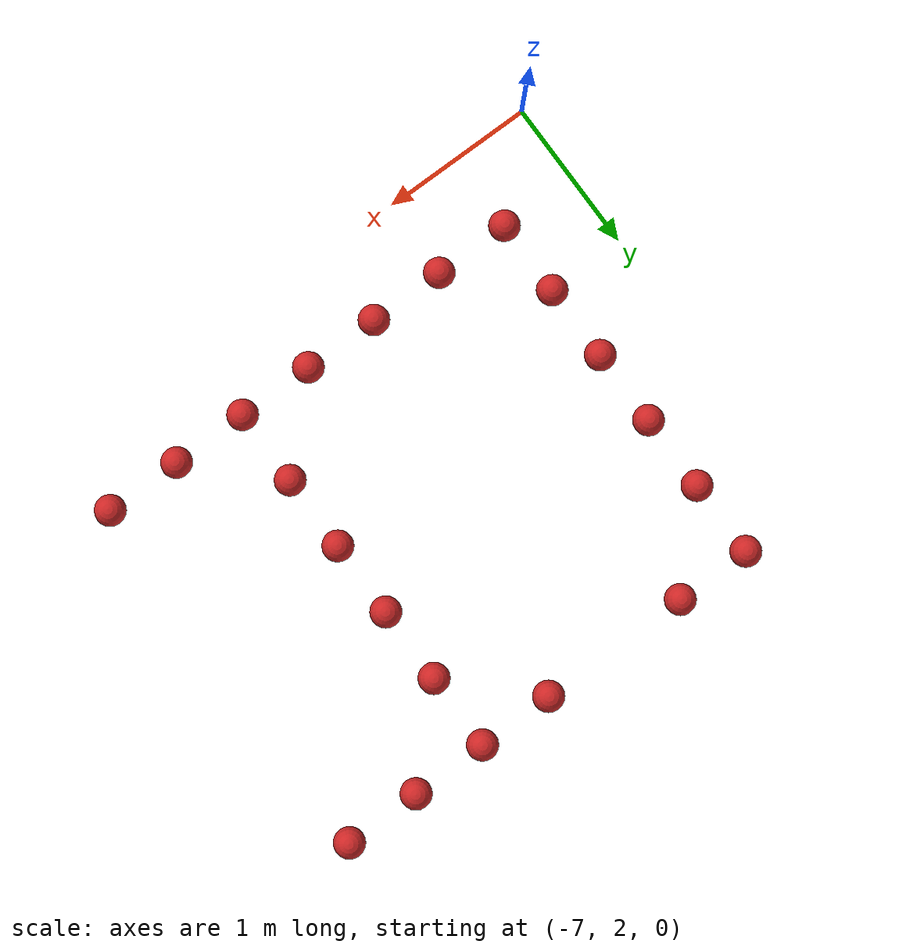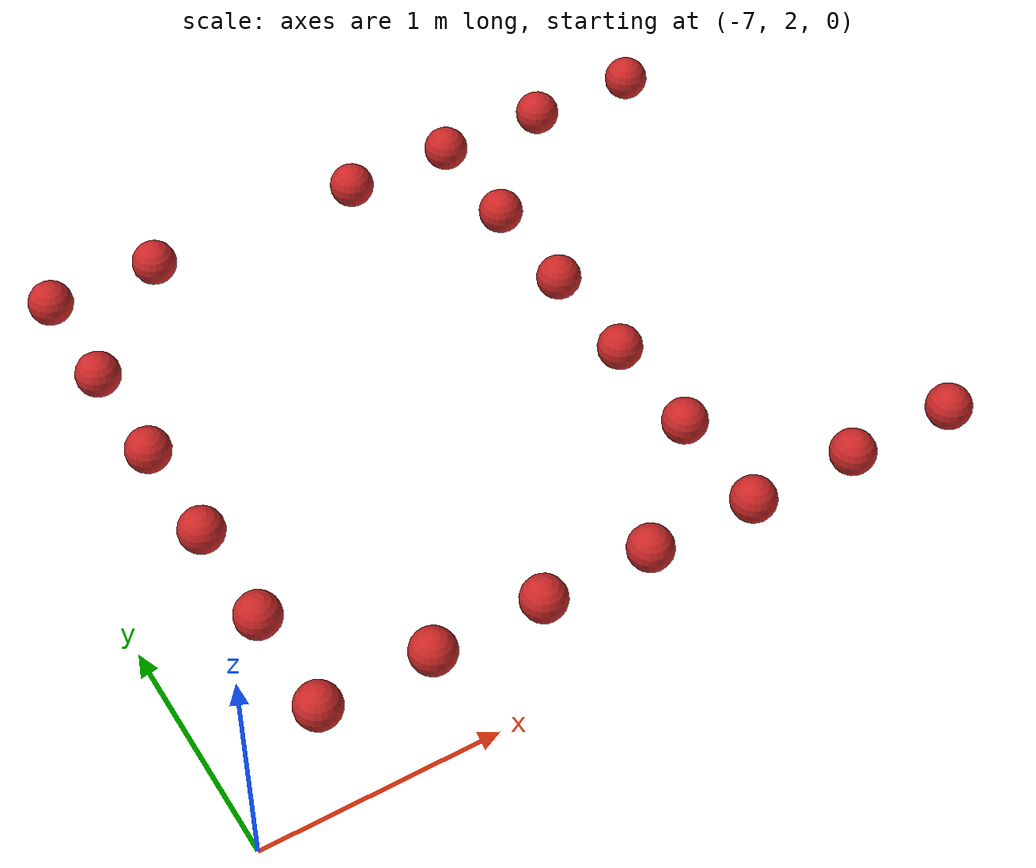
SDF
<sdf version="1.6">
 <model name="level1">
  <link name="Score_Point19">
   <collision name="Score_Point_Collision19">
    <geometry><sphere><radius>0.1</radius></sphere></geometry>
   </collision>
   <visual name="Score_Point_Visual19">
    <geometry><sphere><radius>0.1</radius></sphere></geometry>
    <material>
     <script><uri>file://media/materials/scripts/gazebo.material</uri><name>Gazebo/Red</name></script>
     <ambient>1 1 1 1</ambient>
    </material>
    <meta><layer>0</layer></meta>
   </visual>
   <pose>-6.5 2.5 -0.08 0 0 0</pose>
   <script><uri>file://scripts/score_point_script.py</uri></script>
  </link>
  <link name="Score_Point20">
   <collision name="Score_Point_Collision20">
    <geometry><sphere><radius>0.1</radius></sphere></geometry>
   </collision>
   <visual name="Score_Point_Visual20">
    <geometry><sphere><radius>0.1</radius></sphere></geometry>
    <material>
     <script><uri>file://media/materials/scripts/gazebo.material</uri><name>Gazebo/Red</name></script>
     <ambient>1 1 1 1</ambient>
    </material>
    <meta><layer>0</layer></meta>
   </visual>
   <pose>-6.5 3.0 -0.08 0 0 0</pose>
   <script><uri>file://scripts/score_point_script.py</uri></script>
  </link>
  <link name="Score_Point21">
   <collision name="Score_Point_Collision21">
    <geometry><sphere><radius>0.1</radius></sphere></geometry>
   </collision>
   <visual name="Score_Point_Visual21">
    <geometry><sphere><radius>0.1</radius></sphere></geometry>
    <material>
     <script><uri>file://media/materials/scripts/gazebo.material</uri><name>Gazebo/Red</name></script>
     <ambient>1 1 1 1</ambient>
    </material>
    <meta><layer>0</layer></meta>
   </visual>
   <pose>-6.5 3.5 -0.08 0 0 0</pose>
   <script><uri>file://scripts/score_point_script.py</uri></script>
  </link>
  <link name="Score_Point22">
   <collision name="Score_Point_Collision22">
    <geometry><sphere><radius>0.1</radius></sphere></geometry>
   </collision>
   <visual name="Score_Point_Visual22">
    <geometry><sphere><radius>0.1</radius></sphere></geometry>
    <material>
     <script><uri>file://media/materials/scripts/gazebo.material</uri><name>Gazebo/Red</name></script>
     <ambient>1 1 1 1</ambient>
    </material>
    <meta><layer>0</layer></meta>
   </visual>
   <pose>-6.5 4.0 -0.08 0 0 0</pose>
   <script><uri>file://scripts/score_point_script.py</uri></script>
  </link>
  <link name="Score_Point23">
   <collision name="Score_Point_Collision23">
    <geometry><sphere><radius>0.1</radius></sphere></geometry>
   </collision>
   <visual name="Score_Point_Visual23">
    <geometry><sphere><radius>0.1</radius></sphere></geometry>
    <material>
     <script><uri>file://media/materials/scripts/gazebo.material</uri><name>Gazebo/Red</name></script>
     <ambient>1 1 1 1</ambient>
    </material>
    <meta><layer>0</layer></meta>
   </visual>
   <pose>-6.5 4.5 -0.08 0 0 0</pose>
   <script><uri>file://scripts/score_point_script.py</uri></script>
  </link>
  <link name="Score_Point24">
   <collision name="Score_Point_Collision24">
    <geometry><sphere><radius>0.1</radius></sphere></geometry>
   </collision>
   <visual name="Score_Point_Visual24">
    <geometry><sphere><radius>0.1</radius></sphere></geometry>
    <material>
     <script><uri>file://media/materials/scripts/gazebo.material</uri><name>Gazebo/Red</name></script>
     <ambient>1 1 1 1</ambient>
    </material>
    <meta><layer>0</layer></meta>
   </visual>
   <pose>-6.5 5.0 -0.08 0 0 0</pose>
   <script><uri>file://scripts/score_point_script.py</uri></script>
  </link>
  <link name="Score_Point29">
   <collision name="Score_Point_Collision29">
    <geometry><sphere><radius>0.1</radius></sphere></geometry>
   </collision>
   <visual name="Score_Point_Visual29">
    <geometry><sphere><radius>0.1</radius></sphere></geometry>
    <material>
     <script><uri>file://media/materials/scripts/gazebo.material</uri><name>Gazebo/Red</name></script>
     <ambient>1 1 1 1</ambient>
    </material>
    <meta><layer>0</layer></meta>
   </visual>
   <pose>-6.0 2.5 -0.08 0 0 0</pose>
   <script><uri>file://scripts/score_point_script.py</uri></script>
  </link>
  <link name="Score_Point30">
   <collision name="Score_Point_Collision30">
    <geometry><sphere><radius>0.1</radius></sphere></geometry>
   </collision>
   <visual name="Score_Point_Visual30">
    <geometry><sphere><radius>0.1</radius></sphere></geometry>
    <material>
     <script><uri>file://media/materials/scripts/gazebo.material</uri><name>Gazebo/Red</name></script>
     <ambient>1 1 1 1</ambient>
    </material>
    <meta><layer>0</layer></meta>
   </visual>
   <pose>-6.0 5.0 -0.08 0 0 0</pose>
   <script><uri>file://scripts/score_point_script.py</uri></script>
  </link>
  <link name="Score_Point34">
   <collision name="Score_Point_Collision34">
    <geometry><sphere><radius>0.1</radius></sphere></geometry>
   </collision>
   <visual name="Score_Point_Visual34">
    <geometry><sphere><radius>0.1</radius></sphere></geometry>
    <material>
     <script><uri>file://media/materials/scripts/gazebo.material</uri><name>Gazebo/Red</name></script>
     <ambient>1 1 1 1</ambient>
    </material>
    <meta><layer>0</layer></meta>
   </visual>
   <pose>-5.5 2.5 -0.08 0 0 0</pose>
   <script><uri>file://scripts/score_point_script.py</uri></script>
  </link>
  <link name="Score_Point39">
   <collision name="Score_Point_Collision39">
    <geometry><sphere><radius>0.1</radius></sphere></geometry>
   </collision>
   <visual name="Score_Point_Visual39">
    <geometry><sphere><radius>0.1</radius></sphere></geometry>
    <material>
     <script><uri>file://media/materials/scripts/gazebo.material</uri><name>Gazebo/Red</name></script>
     <ambient>1 1 1 1</ambient>
    </material>
    <meta><layer>0</layer></meta>
   </visual>
   <pose>-5.0 2.5 -0.08 0 0 0</pose>
   <script><uri>file://scripts/score_point_script.py</uri></script>
  </link>
  <link name="Score_Point40">
   <collision name="Score_Point_Collision40">
    <geometry><sphere><radius>0.1</radius></sphere></geometry>
   </collision>
   <visual name="Score_Point_Visual40">
    <geometry><sphere><radius>0.1</radius></sphere></geometry>
    <material>
     <script><uri>file://media/materials/scripts/gazebo.material</uri><name>Gazebo/Red</name></script>
     <ambient>1 1 1 1</ambient>
    </material>
    <meta><layer>0</layer></meta>
   </visual>
   <pose>-5.0 5.0 -0.08 0 0 0</pose>
   <script><uri>file://scripts/score_point_script.py</uri></script>
  </link>
  <link name="Score_Point61">
   <collision name="Score_Point_Collision61">
    <geometry><sphere><radius>0.1</radius></sphere></geometry>
   </collision>
   <visual name="Score_Point_Visual61">
    <geometry><sphere><radius>0.1</radius></sphere></geometry>
    <material>
     <script><uri>file://media/materials/scripts/gazebo.material</uri><name>Gazebo/Red</name></script>
     <ambient>1 1 1 1</ambient>
    </material>
    <meta><layer>0</layer></meta>
   </visual>
   <pose>-4.5 2.5 -0.08 0 0 0</pose>
   <script><uri>file://scripts/score_point_script.py</uri></script>
  </link>
  <link name="Score_Point62">
   <collision name="Score_Point_Collision62">
    <geometry><sphere><radius>0.1</radius></sphere></geometry>
   </collision>
   <visual name="Score_Point_Visual62">
    <geometry><sphere><radius>0.1</radius></sphere></geometry>
    <material>
     <script><uri>file://media/materials/scripts/gazebo.material</uri><name>Gazebo/Red</name></script>
     <ambient>1 1 1 1</ambient>
    </material>
    <meta><layer>0</layer></meta>
   </visual>
   <pose>-4.5 3.0 -0.08 0 0 0</pose>
   <script><uri>file://scripts/score_point_script.py</uri></script>
  </link>
  <link name="Score_Point63">
   <collision name="Score_Point_Collision63">
    <geometry><sphere><radius>0.1</radius></sphere></geometry>
   </collision>
   <visual name="Score_Point_Visual63">
    <geometry><sphere><radius>0.1</radius></sphere></geometry>
    <material>
     <script><uri>file://media/materials/scripts/gazebo.material</uri><name>Gazebo/Red</name></script>
     <ambient>1 1 1 1</ambient>
    </material>
    <meta><layer>0</layer></meta>
   </visual>
   <pose>-4.5 3.5 -0.08 0 0 0</pose>
   <script><uri>file://scripts/score_point_script.py</uri></script>
  </link>
  <link name="Score_Point64">
   <collision name="Score_Point_Collision64">
    <geometry><sphere><radius>0.1</radius></sphere></geometry>
   </collision>
   <visual name="Score_Point_Visual64">
    <geometry><sphere><radius>0.1</radius></sphere></geometry>
    <material>
     <script><uri>file://media/materials/scripts/gazebo.material</uri><name>Gazebo/Red</name></script>
     <ambient>1 1 1 1</ambient>
    </material>
    <meta><layer>0</layer></meta>
   </visual>
   <pose>-4.5 4.0 -0.08 0 0 0</pose>
   <script><uri>file://scripts/score_point_script.py</uri></script>
  </link>
  <link name="Score_Point65">
   <collision name="Score_Point_Collision65">
    <geometry><sphere><radius>0.1</radius></sphere></geometry>
   </collision>
   <visual name="Score_Point_Visual65">
    <geometry><sphere><radius>0.1</radius></sphere></geometry>
    <material>
     <script><uri>file://media/materials/scripts/gazebo.material</uri><name>Gazebo/Red</name></script>
     <ambient>1 1 1 1</ambient>
    </material>
    <meta><layer>0</layer></meta>
   </visual>
   <pose>-4.5 4.5 -0.08 0 0 0</pose>
   <script><uri>file://scripts/score_point_script.py</uri></script>
  </link>
  <link name="Score_Point66">
   <collision name="Score_Point_Collision66">
    <geometry><sphere><radius>0.1</radius></sphere></geometry>
   </collision>
   <visual name="Score_Point_Visual66">
    <geometry><sphere><radius>0.1</radius></sphere></geometry>
    <material>
     <script><uri>file://media/materials/scripts/gazebo.material</uri><name>Gazebo/Red</name></script>
     <ambient>1 1 1 1</ambient>
    </material>
    <meta><layer>0</layer></meta>
   </visual>
   <pose>-4.5 5.0 -0.08 0 0 0</pose>
   <script><uri>file://scripts/score_point_script.py</uri></script>
  </link>
  <link name="Score_Point71">
   <collision name="Score_Point_Collision71">
    <geometry><sphere><radius>0.1</radius></sphere></geometry>
   </collision>
   <visual name="Score_Point_Visual71">
    <geometry><sphere><radius>0.1</radius></sphere></geometry>
    <material>
     <script><uri>file://media/materials/scripts/gazebo.material</uri><name>Gazebo/Red</name></script>
     <ambient>1 1 1 1</ambient>
    </material>
    <meta><layer>0</layer></meta>
   </visual>
   <pose>-4.0 2.5 -0.08 0 0 0</pose>
   <script><uri>file://scripts/score_point_script.py</uri></script>
  </link>
  <link name="Score_Point72">
   <collision name="Score_Point_Collision72">
    <geometry><sphere><radius>0.1</radius></sphere></geometry>
   </collision>
   <visual name="Score_Point_Visual72">
    <geometry><sphere><radius>0.1</radius></sphere></geometry>
    <material>
     <script><uri>file://media/materials/scripts/gazebo.material</uri><name>Gazebo/Red</name></script>
     <ambient>1 1 1 1</ambient>
    </material>
    <meta><layer>0</layer></meta>
   </visual>
   <pose>-4.0 5.0 -0.08 0 0 0</pose>
   <script><uri>file://scripts/score_point_script.py</uri></script>
  </link>
  <link name="Score_Point77">
   <collision name="Score_Point_Collision77">
    <geometry><sphere><radius>0.1</radius></sphere></geometry>
   </collision>
   <visual name="Score_Point_Visual77">
    <geometry><sphere><radius>0.1</radius></sphere></geometry>
    <material>
     <script><uri>file://media/materials/scripts/gazebo.material</uri><name>Gazebo/Red</name></script>
     <ambient>1 1 1 1</ambient>
    </material>
    <meta><layer>0</layer></meta>
   </visual>
   <pose>-3.5 2.5 -0.08 0 0 0</pose>
   <script><uri>file://scripts/score_point_script.py</uri></script>
  </link>
  <link name="Score_Point78">
   <collision name="Score_Point_Collision78">
    <geometry><sphere><radius>0.1</radius></sphere></geometry>
   </collision>
   <visual name="Score_Point_Visual78">
    <geometry><sphere><radius>0.1</radius></sphere></geometry>
    <material>
     <script><uri>file://media/materials/scripts/gazebo.material</uri><name>Gazebo/Red</name></script>
     <ambient>1 1 1 1</ambient>
    </material>
    <meta><layer>0</layer></meta>
   </visual>
   <pose>-3.5 5.0 -0.08 0 0 0</pose>
   <script><uri>file://scripts/score_point_script.py</uri></script>
  </link>
  <static>1</static>
 </model>
</sdf>
